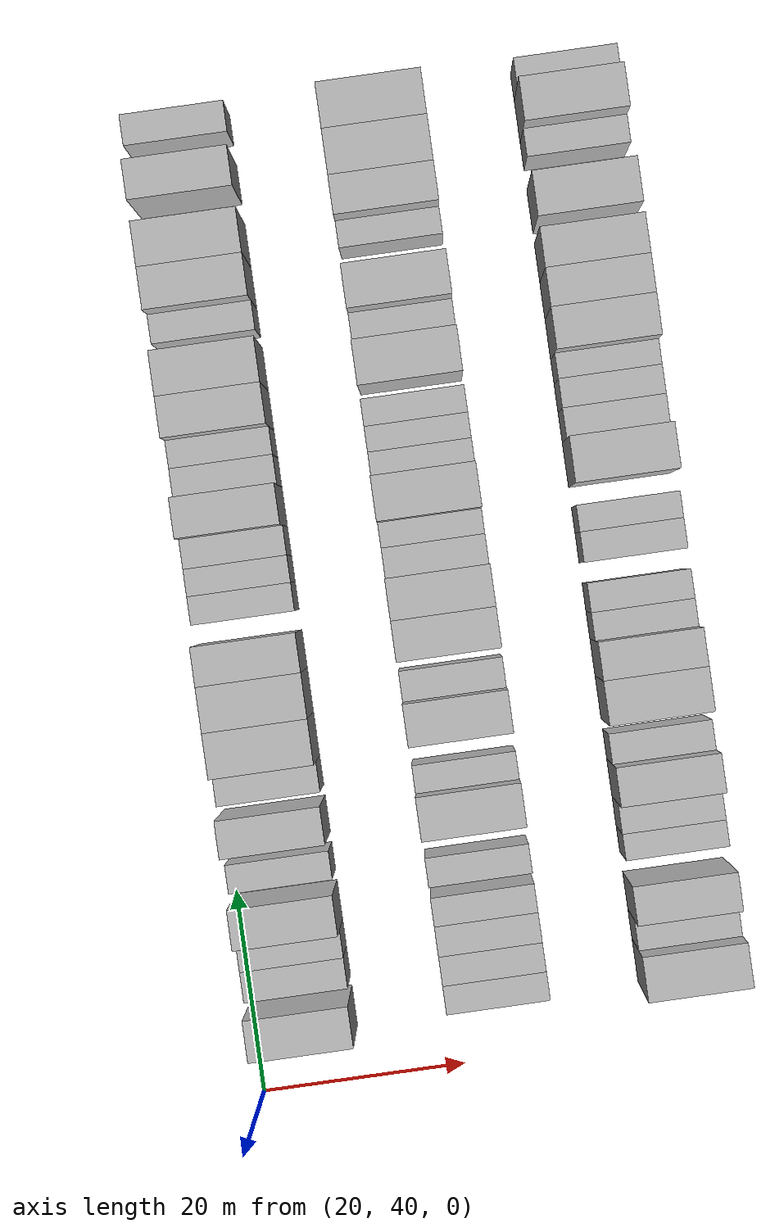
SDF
<sdf version="1.6">
 <world name="default">
  <model name="building_71">
   <static>1</static>
   <pose>25.0000 47.2286 0 0.000000 0.000000 0.000000</pose>
   <link name="link">
    <pose>0 0 4.50 0 0 0</pose>
    <collision name="collision"><geometry><box><size>10.0000 3.9848 9.0000</size></box></geometry></collision>
    <visual name="visual">
     <cast_shadows>0</cast_shadows>
     <geometry><box><size>10.0000 3.9848 9.0000</size></box></geometry>
     <material>
      <script>
       <uri>model://HANNAS_wall/materials/scripts</uri>
       <uri>model://HANNAS_wall/materials/textures</uri>
       <name>vrc/HANNAS_wall</name>
      </script>
     </material>
    </visual>
   </link>
  </model>
  <model name="building_72">
   <static>1</static>
   <pose>25.0000 51.6965 0 0.000000 0.000000 0.000000</pose>
   <link name="link">
    <pose>0 0 3.00 0 0 0</pose>
    <collision name="collision"><geometry><box><size>10.0000 2.9509 6.0000</size></box></geometry></collision>
    <visual name="visual">
     <cast_shadows>0</cast_shadows>
     <geometry><box><size>10.0000 2.9509 6.0000</size></box></geometry>
     <material>
      <script>
       <uri>model://HANNAS_wall/materials/scripts</uri>
       <uri>model://HANNAS_wall/materials/textures</uri>
       <name>vrc/HANNAS_wall</name>
      </script>
     </material>
    </visual>
   </link>
  </model>
  <model name="building_73">
   <static>1</static>
   <pose>25.0000 54.4995 0 0.000000 0.000000 0.000000</pose>
   <link name="link">
    <pose>0 0 3.00 0 0 0</pose>
    <collision name="collision"><geometry><box><size>10.0000 2.6552 6.0000</size></box></geometry></collision>
    <visual name="visual">
     <cast_shadows>0</cast_shadows>
     <geometry><box><size>10.0000 2.6552 6.0000</size></box></geometry>
     <material>
      <script>
       <uri>model://HANNAS_wall/materials/scripts</uri>
       <uri>model://HANNAS_wall/materials/textures</uri>
       <name>vrc/HANNAS_wall</name>
      </script>
     </material>
    </visual>
   </link>
  </model>
  <model name="building_74">
   <static>1</static>
   <pose>25.0000 57.7731 0 0.000000 0.000000 0.000000</pose>
   <link name="link">
    <pose>0 0 4.50 0 0 0</pose>
    <collision name="collision"><geometry><box><size>10.0000 3.8920 9.0000</size></box></geometry></collision>
    <visual name="visual">
     <cast_shadows>0</cast_shadows>
     <geometry><box><size>10.0000 3.8920 9.0000</size></box></geometry>
     <material>
      <script>
       <uri>model://HANNAS_wall/materials/scripts</uri>
       <uri>model://HANNAS_wall/materials/textures</uri>
       <name>vrc/HANNAS_wall</name>
      </script>
     </material>
    </visual>
   </link>
  </model>
  <model name="building_75">
   <static>1</static>
   <pose>25.0000 62.1037 0 0.000000 0.000000 0.000000</pose>
   <link name="link">
    <pose>0 0 3.00 0 0 0</pose>
    <collision name="collision"><geometry><box><size>10.0000 2.7691 6.0000</size></box></geometry></collision>
    <visual name="visual">
     <cast_shadows>0</cast_shadows>
     <geometry><box><size>10.0000 2.7691 6.0000</size></box></geometry>
     <material>
      <script>
       <uri>model://HANNAS_wall/materials/scripts</uri>
       <uri>model://HANNAS_wall/materials/textures</uri>
       <name>vrc/HANNAS_wall</name>
      </script>
     </material>
    </visual>
   </link>
  </model>
  <model name="building_76">
   <static>1</static>
   <pose>25.0000 66.3098 0 0.000000 0.000000 0.000000</pose>
   <link name="link">
    <pose>0 0 4.50 0 0 0</pose>
    <collision name="collision"><geometry><box><size>10.0000 3.6431 9.0000</size></box></geometry></collision>
    <visual name="visual">
     <cast_shadows>0</cast_shadows>
     <geometry><box><size>10.0000 3.6431 9.0000</size></box></geometry>
     <material>
      <script>
       <uri>model://HANNAS_wall/materials/scripts</uri>
       <uri>model://HANNAS_wall/materials/textures</uri>
       <name>vrc/HANNAS_wall</name>
      </script>
     </material>
    </visual>
   </link>
  </model>
  <model name="building_77">
   <static>1</static>
   <pose>25.0000 70.5942 0 0.000000 0.000000 0.000000</pose>
   <link name="link">
    <pose>0 0 3.00 0 0 0</pose>
    <collision name="collision"><geometry><box><size>10.0000 2.9257 6.0000</size></box></geometry></collision>
    <visual name="visual">
     <cast_shadows>0</cast_shadows>
     <geometry><box><size>10.0000 2.9257 6.0000</size></box></geometry>
     <material>
      <script>
       <uri>model://HANNAS_wall/materials/scripts</uri>
       <uri>model://HANNAS_wall/materials/textures</uri>
       <name>vrc/HANNAS_wall</name>
      </script>
     </material>
    </visual>
   </link>
  </model>
  <model name="building_78">
   <static>1</static>
   <pose>25.0000 74.2457 0 0.000000 0.000000 0.000000</pose>
   <link name="link">
    <pose>0 0 4.50 0 0 0</pose>
    <collision name="collision"><geometry><box><size>10.0000 4.3774 9.0000</size></box></geometry></collision>
    <visual name="visual">
     <cast_shadows>0</cast_shadows>
     <geometry><box><size>10.0000 4.3774 9.0000</size></box></geometry>
     <material>
      <script>
       <uri>model://HANNAS_wall/materials/scripts</uri>
       <uri>model://HANNAS_wall/materials/textures</uri>
       <name>vrc/HANNAS_wall</name>
      </script>
     </material>
    </visual>
   </link>
  </model>
  <model name="building_79">
   <static>1</static>
   <pose>25.0000 78.6218 0 0.000000 0.000000 0.000000</pose>
   <link name="link">
    <pose>0 0 4.50 0 0 0</pose>
    <collision name="collision"><geometry><box><size>10.0000 4.3747 9.0000</size></box></geometry></collision>
    <visual name="visual">
     <cast_shadows>0</cast_shadows>
     <geometry><box><size>10.0000 4.3747 9.0000</size></box></geometry>
     <material>
      <script>
       <uri>model://HANNAS_wall/materials/scripts</uri>
       <uri>model://HANNAS_wall/materials/textures</uri>
       <name>vrc/HANNAS_wall</name>
      </script>
     </material>
    </visual>
   </link>
  </model>
  <model name="building_80">
   <static>1</static>
   <pose>25.0000 82.7082 0 0.000000 0.000000 0.000000</pose>
   <link name="link">
    <pose>0 0 4.50 0 0 0</pose>
    <collision name="collision"><geometry><box><size>10.0000 3.7982 9.0000</size></box></geometry></collision>
    <visual name="visual">
     <cast_shadows>0</cast_shadows>
     <geometry><box><size>10.0000 3.7982 9.0000</size></box></geometry>
     <material>
      <script>
       <uri>model://HANNAS_wall/materials/scripts</uri>
       <uri>model://HANNAS_wall/materials/textures</uri>
       <name>vrc/HANNAS_wall</name>
      </script>
     </material>
    </visual>
   </link>
  </model>
  <model name="building_81">
   <static>1</static>
   <pose>25.0000 87.9772 0 0.000000 0.000000 0.000000</pose>
   <link name="link">
    <pose>0 0 3.00 0 0 0</pose>
    <collision name="collision"><geometry><box><size>10.0000 2.7397 6.0000</size></box></geometry></collision>
    <visual name="visual">
     <cast_shadows>0</cast_shadows>
     <geometry><box><size>10.0000 2.7397 6.0000</size></box></geometry>
     <material>
      <script>
       <uri>model://HANNAS_wall/materials/scripts</uri>
       <uri>model://HANNAS_wall/materials/textures</uri>
       <name>vrc/HANNAS_wall</name>
      </script>
     </material>
    </visual>
   </link>
  </model>
  <model name="building_82">
   <static>1</static>
   <pose>25.0000 90.6677 0 0.000000 0.000000 0.000000</pose>
   <link name="link">
    <pose>0 0 3.00 0 0 0</pose>
    <collision name="collision"><geometry><box><size>10.0000 2.6412 6.0000</size></box></geometry></collision>
    <visual name="visual">
     <cast_shadows>0</cast_shadows>
     <geometry><box><size>10.0000 2.6412 6.0000</size></box></geometry>
     <material>
      <script>
       <uri>model://HANNAS_wall/materials/scripts</uri>
       <uri>model://HANNAS_wall/materials/textures</uri>
       <name>vrc/HANNAS_wall</name>
      </script>
     </material>
    </visual>
   </link>
  </model>
  <model name="building_83">
   <static>1</static>
   <pose>25.0000 93.4304 0 0.000000 0.000000 0.000000</pose>
   <link name="link">
    <pose>0 0 3.00 0 0 0</pose>
    <collision name="collision"><geometry><box><size>10.0000 2.8843 6.0000</size></box></geometry></collision>
    <visual name="visual">
     <cast_shadows>0</cast_shadows>
     <geometry><box><size>10.0000 2.8843 6.0000</size></box></geometry>
     <material>
      <script>
       <uri>model://HANNAS_wall/materials/scripts</uri>
       <uri>model://HANNAS_wall/materials/textures</uri>
       <name>vrc/HANNAS_wall</name>
      </script>
     </material>
    </visual>
   </link>
  </model>
  <model name="building_84">
   <static>1</static>
   <pose>25.0000 96.8308 0 0.000000 0.000000 0.000000</pose>
   <link name="link">
    <pose>0 0 4.50 0 0 0</pose>
    <collision name="collision"><geometry><box><size>10.0000 3.9165 9.0000</size></box></geometry></collision>
    <visual name="visual">
     <cast_shadows>0</cast_shadows>
     <geometry><box><size>10.0000 3.9165 9.0000</size></box></geometry>
     <material>
      <script>
       <uri>model://HANNAS_wall/materials/scripts</uri>
       <uri>model://HANNAS_wall/materials/textures</uri>
       <name>vrc/HANNAS_wall</name>
      </script>
     </material>
    </visual>
   </link>
  </model>
  <model name="building_85">
   <static>1</static>
   <pose>25.0000 100.2421 0 0.000000 0.000000 0.000000</pose>
   <link name="link">
    <pose>0 0 3.00 0 0 0</pose>
    <collision name="collision"><geometry><box><size>10.0000 2.9061 6.0000</size></box></geometry></collision>
    <visual name="visual">
     <cast_shadows>0</cast_shadows>
     <geometry><box><size>10.0000 2.9061 6.0000</size></box></geometry>
     <material>
      <script>
       <uri>model://HANNAS_wall/materials/scripts</uri>
       <uri>model://HANNAS_wall/materials/textures</uri>
       <name>vrc/HANNAS_wall</name>
      </script>
     </material>
    </visual>
   </link>
  </model>
  <model name="building_86">
   <static>1</static>
   <pose>25.0000 103.0500 0 0.000000 0.000000 0.000000</pose>
   <link name="link">
    <pose>0 0 3.00 0 0 0</pose>
    <collision name="collision"><geometry><box><size>10.0000 2.7096 6.0000</size></box></geometry></collision>
    <visual name="visual">
     <cast_shadows>0</cast_shadows>
     <geometry><box><size>10.0000 2.7096 6.0000</size></box></geometry>
     <material>
      <script>
       <uri>model://HANNAS_wall/materials/scripts</uri>
       <uri>model://HANNAS_wall/materials/textures</uri>
       <name>vrc/HANNAS_wall</name>
      </script>
     </material>
    </visual>
   </link>
  </model>
  <model name="building_87">
   <static>1</static>
   <pose>25.0000 106.3775 0 0.000000 0.000000 0.000000</pose>
   <link name="link">
    <pose>0 0 4.50 0 0 0</pose>
    <collision name="collision"><geometry><box><size>10.0000 3.9454 9.0000</size></box></geometry></collision>
    <visual name="visual">
     <cast_shadows>0</cast_shadows>
     <geometry><box><size>10.0000 3.9454 9.0000</size></box></geometry>
     <material>
      <script>
       <uri>model://HANNAS_wall/materials/scripts</uri>
       <uri>model://HANNAS_wall/materials/textures</uri>
       <name>vrc/HANNAS_wall</name>
      </script>
     </material>
    </visual>
   </link>
  </model>
  <model name="building_88">
   <static>1</static>
   <pose>25.0000 110.5230 0 0.000000 0.000000 0.000000</pose>
   <link name="link">
    <pose>0 0 4.50 0 0 0</pose>
    <collision name="collision"><geometry><box><size>10.0000 4.3455 9.0000</size></box></geometry></collision>
    <visual name="visual">
     <cast_shadows>0</cast_shadows>
     <geometry><box><size>10.0000 4.3455 9.0000</size></box></geometry>
     <material>
      <script>
       <uri>model://HANNAS_wall/materials/scripts</uri>
       <uri>model://HANNAS_wall/materials/textures</uri>
       <name>vrc/HANNAS_wall</name>
      </script>
     </material>
    </visual>
   </link>
  </model>
  <model name="building_89">
   <static>1</static>
   <pose>25.0000 115.1165 0 0.000000 0.000000 0.000000</pose>
   <link name="link">
    <pose>0 0 3.00 0 0 0</pose>
    <collision name="collision"><geometry><box><size>10.0000 2.8415 6.0000</size></box></geometry></collision>
    <visual name="visual">
     <cast_shadows>0</cast_shadows>
     <geometry><box><size>10.0000 2.8415 6.0000</size></box></geometry>
     <material>
      <script>
       <uri>model://HANNAS_wall/materials/scripts</uri>
       <uri>model://HANNAS_wall/materials/textures</uri>
       <name>vrc/HANNAS_wall</name>
      </script>
     </material>
    </visual>
   </link>
  </model>
  <model name="building_90">
   <static>1</static>
   <pose>25.0000 118.5710 0 0.000000 0.000000 0.000000</pose>
   <link name="link">
    <pose>0 0 4.50 0 0 0</pose>
    <collision name="collision"><geometry><box><size>10.0000 4.0676 9.0000</size></box></geometry></collision>
    <visual name="visual">
     <cast_shadows>0</cast_shadows>
     <geometry><box><size>10.0000 4.0676 9.0000</size></box></geometry>
     <material>
      <script>
       <uri>model://HANNAS_wall/materials/scripts</uri>
       <uri>model://HANNAS_wall/materials/textures</uri>
       <name>vrc/HANNAS_wall</name>
      </script>
     </material>
    </visual>
   </link>
  </model>
  <model name="building_91">
   <static>1</static>
   <pose>25.0000 122.7736 0 0.000000 0.000000 0.000000</pose>
   <link name="link">
    <pose>0 0 4.50 0 0 0</pose>
    <collision name="collision"><geometry><box><size>10.0000 4.3375 9.0000</size></box></geometry></collision>
    <visual name="visual">
     <cast_shadows>0</cast_shadows>
     <geometry><box><size>10.0000 4.3375 9.0000</size></box></geometry>
     <material>
      <script>
       <uri>model://HANNAS_wall/materials/scripts</uri>
       <uri>model://HANNAS_wall/materials/textures</uri>
       <name>vrc/HANNAS_wall</name>
      </script>
     </material>
    </visual>
   </link>
  </model>
  <model name="building_92">
   <static>1</static>
   <pose>25.0000 128.8661 0 0.000000 0.000000 0.000000</pose>
   <link name="link">
    <pose>0 0 4.50 0 0 0</pose>
    <collision name="collision"><geometry><box><size>10.0000 3.8475 9.0000</size></box></geometry></collision>
    <visual name="visual">
     <cast_shadows>0</cast_shadows>
     <geometry><box><size>10.0000 3.8475 9.0000</size></box></geometry>
     <material>
      <script>
       <uri>model://HANNAS_wall/materials/scripts</uri>
       <uri>model://HANNAS_wall/materials/textures</uri>
       <name>vrc/HANNAS_wall</name>
      </script>
     </material>
    </visual>
   </link>
  </model>
  <model name="building_93">
   <static>1</static>
   <pose>25.0000 134.2841 0 0.000000 0.000000 0.000000</pose>
   <link name="link">
    <pose>0 0 3.00 0 0 0</pose>
    <collision name="collision"><geometry><box><size>10.0000 2.9885 6.0000</size></box></geometry></collision>
    <visual name="visual">
     <cast_shadows>0</cast_shadows>
     <geometry><box><size>10.0000 2.9885 6.0000</size></box></geometry>
     <material>
      <script>
       <uri>model://HANNAS_wall/materials/scripts</uri>
       <uri>model://HANNAS_wall/materials/textures</uri>
       <name>vrc/HANNAS_wall</name>
      </script>
     </material>
    </visual>
   </link>
  </model>
  <model name="building_188">
   <static>1</static>
   <pose>44.0000 47.7915 0 0.000000 0.000000 0.000000</pose>
   <link name="link">
    <pose>0 0 3.00 0 0 0</pose>
    <collision name="collision"><geometry><box><size>10.0000 2.7388 6.0000</size></box></geometry></collision>
    <visual name="visual">
     <cast_shadows>0</cast_shadows>
     <geometry><box><size>10.0000 2.7388 6.0000</size></box></geometry>
     <material>
      <script>
       <uri>model://HANNAS_wall/materials/scripts</uri>
       <uri>model://HANNAS_wall/materials/textures</uri>
       <name>vrc/HANNAS_wall</name>
      </script>
     </material>
    </visual>
   </link>
  </model>
  <model name="building_189">
   <static>1</static>
   <pose>44.0000 50.5681 0 0.000000 0.000000 0.000000</pose>
   <link name="link">
    <pose>0 0 3.00 0 0 0</pose>
    <collision name="collision"><geometry><box><size>10.0000 2.8144 6.0000</size></box></geometry></collision>
    <visual name="visual">
     <cast_shadows>0</cast_shadows>
     <geometry><box><size>10.0000 2.8144 6.0000</size></box></geometry>
     <material>
      <script>
       <uri>model://HANNAS_wall/materials/scripts</uri>
       <uri>model://HANNAS_wall/materials/textures</uri>
       <name>vrc/HANNAS_wall</name>
      </script>
     </material>
    </visual>
   </link>
  </model>
  <model name="building_190">
   <static>1</static>
   <pose>44.0000 53.4268 0 0.000000 0.000000 0.000000</pose>
   <link name="link">
    <pose>0 0 3.00 0 0 0</pose>
    <collision name="collision"><geometry><box><size>10.0000 2.9030 6.0000</size></box></geometry></collision>
    <visual name="visual">
     <cast_shadows>0</cast_shadows>
     <geometry><box><size>10.0000 2.9030 6.0000</size></box></geometry>
     <material>
      <script>
       <uri>model://HANNAS_wall/materials/scripts</uri>
       <uri>model://HANNAS_wall/materials/textures</uri>
       <name>vrc/HANNAS_wall</name>
      </script>
     </material>
    </visual>
   </link>
  </model>
  <model name="building_191">
   <static>1</static>
   <pose>44.0000 56.2660 0 0.000000 0.000000 0.000000</pose>
   <link name="link">
    <pose>0 0 3.00 0 0 0</pose>
    <collision name="collision"><geometry><box><size>10.0000 2.7755 6.0000</size></box></geometry></collision>
    <visual name="visual">
     <cast_shadows>0</cast_shadows>
     <geometry><box><size>10.0000 2.7755 6.0000</size></box></geometry>
     <material>
      <script>
       <uri>model://HANNAS_wall/materials/scripts</uri>
       <uri>model://HANNAS_wall/materials/textures</uri>
       <name>vrc/HANNAS_wall</name>
      </script>
     </material>
    </visual>
   </link>
  </model>
  <model name="building_192">
   <static>1</static>
   <pose>44.0000 60.0739 0 0.000000 0.000000 0.000000</pose>
   <link name="link">
    <pose>0 0 3.00 0 0 0</pose>
    <collision name="collision"><geometry><box><size>10.0000 2.8402 6.0000</size></box></geometry></collision>
    <visual name="visual">
     <cast_shadows>0</cast_shadows>
     <geometry><box><size>10.0000 2.8402 6.0000</size></box></geometry>
     <material>
      <script>
       <uri>model://HANNAS_wall/materials/scripts</uri>
       <uri>model://HANNAS_wall/materials/textures</uri>
       <name>vrc/HANNAS_wall</name>
      </script>
     </material>
    </visual>
   </link>
  </model>
  <model name="building_193">
   <static>1</static>
   <pose>44.0000 65.6037 0 0.000000 0.000000 0.000000</pose>
   <link name="link">
    <pose>0 0 4.50 0 0 0</pose>
    <collision name="collision"><geometry><box><size>10.0000 4.2195 9.0000</size></box></geometry></collision>
    <visual name="visual">
     <cast_shadows>0</cast_shadows>
     <geometry><box><size>10.0000 4.2195 9.0000</size></box></geometry>
     <material>
      <script>
       <uri>model://HANNAS_wall/materials/scripts</uri>
       <uri>model://HANNAS_wall/materials/textures</uri>
       <name>vrc/HANNAS_wall</name>
      </script>
     </material>
    </visual>
   </link>
  </model>
  <model name="building_194">
   <static>1</static>
   <pose>44.0000 69.0674 0 0.000000 0.000000 0.000000</pose>
   <link name="link">
    <pose>0 0 3.00 0 0 0</pose>
    <collision name="collision"><geometry><box><size>10.0000 2.7080 6.0000</size></box></geometry></collision>
    <visual name="visual">
     <cast_shadows>0</cast_shadows>
     <geometry><box><size>10.0000 2.7080 6.0000</size></box></geometry>
     <material>
      <script>
       <uri>model://HANNAS_wall/materials/scripts</uri>
       <uri>model://HANNAS_wall/materials/textures</uri>
       <name>vrc/HANNAS_wall</name>
      </script>
     </material>
    </visual>
   </link>
  </model>
  <model name="building_195">
   <static>1</static>
   <pose>44.0000 74.4796 0 0.000000 0.000000 0.000000</pose>
   <link name="link">
    <pose>0 0 4.50 0 0 0</pose>
    <collision name="collision"><geometry><box><size>10.0000 4.1163 9.0000</size></box></geometry></collision>
    <visual name="visual">
     <cast_shadows>0</cast_shadows>
     <geometry><box><size>10.0000 4.1163 9.0000</size></box></geometry>
     <material>
      <script>
       <uri>model://HANNAS_wall/materials/scripts</uri>
       <uri>model://HANNAS_wall/materials/textures</uri>
       <name>vrc/HANNAS_wall</name>
      </script>
     </material>
    </visual>
   </link>
  </model>
  <model name="building_196">
   <static>1</static>
   <pose>44.0000 78.0209 0 0.000000 0.000000 0.000000</pose>
   <link name="link">
    <pose>0 0 3.00 0 0 0</pose>
    <collision name="collision"><geometry><box><size>10.0000 2.9663 6.0000</size></box></geometry></collision>
    <visual name="visual">
     <cast_shadows>0</cast_shadows>
     <geometry><box><size>10.0000 2.9663 6.0000</size></box></geometry>
     <material>
      <script>
       <uri>model://HANNAS_wall/materials/scripts</uri>
       <uri>model://HANNAS_wall/materials/textures</uri>
       <name>vrc/HANNAS_wall</name>
      </script>
     </material>
    </visual>
   </link>
  </model>
  <model name="building_197">
   <static>1</static>
   <pose>44.0000 82.4602 0 0.000000 0.000000 0.000000</pose>
   <link name="link">
    <pose>0 0 4.50 0 0 0</pose>
    <collision name="collision"><geometry><box><size>10.0000 3.9125 9.0000</size></box></geometry></collision>
    <visual name="visual">
     <cast_shadows>0</cast_shadows>
     <geometry><box><size>10.0000 3.9125 9.0000</size></box></geometry>
     <material>
      <script>
       <uri>model://HANNAS_wall/materials/scripts</uri>
       <uri>model://HANNAS_wall/materials/textures</uri>
       <name>vrc/HANNAS_wall</name>
      </script>
     </material>
    </visual>
   </link>
  </model>
  <model name="building_198">
   <static>1</static>
   <pose>44.0000 86.4283 0 0.000000 0.000000 0.000000</pose>
   <link name="link">
    <pose>0 0 4.50 0 0 0</pose>
    <collision name="collision"><geometry><box><size>10.0000 4.0237 9.0000</size></box></geometry></collision>
    <visual name="visual">
     <cast_shadows>0</cast_shadows>
     <geometry><box><size>10.0000 4.0237 9.0000</size></box></geometry>
     <material>
      <script>
       <uri>model://HANNAS_wall/materials/scripts</uri>
       <uri>model://HANNAS_wall/materials/textures</uri>
       <name>vrc/HANNAS_wall</name>
      </script>
     </material>
    </visual>
   </link>
  </model>
  <model name="building_199">
   <static>1</static>
   <pose>44.0000 89.9081 0 0.000000 0.000000 0.000000</pose>
   <link name="link">
    <pose>0 0 3.00 0 0 0</pose>
    <collision name="collision"><geometry><box><size>10.0000 2.9359 6.0000</size></box></geometry></collision>
    <visual name="visual">
     <cast_shadows>0</cast_shadows>
     <geometry><box><size>10.0000 2.9359 6.0000</size></box></geometry>
     <material>
      <script>
       <uri>model://HANNAS_wall/materials/scripts</uri>
       <uri>model://HANNAS_wall/materials/textures</uri>
       <name>vrc/HANNAS_wall</name>
      </script>
     </material>
    </visual>
   </link>
  </model>
  <model name="building_200">
   <static>1</static>
   <pose>44.0000 92.6048 0 0.000000 0.000000 0.000000</pose>
   <link name="link">
    <pose>0 0 3.00 0 0 0</pose>
    <collision name="collision"><geometry><box><size>10.0000 2.4577 6.0000</size></box></geometry></collision>
    <visual name="visual">
     <cast_shadows>0</cast_shadows>
     <geometry><box><size>10.0000 2.4577 6.0000</size></box></geometry>
     <material>
      <script>
       <uri>model://HANNAS_wall/materials/scripts</uri>
       <uri>model://HANNAS_wall/materials/textures</uri>
       <name>vrc/HANNAS_wall</name>
      </script>
     </material>
    </visual>
   </link>
  </model>
  <model name="building_201">
   <static>1</static>
   <pose>44.0000 96.0098 0 0.000000 0.000000 0.000000</pose>
   <link name="link">
    <pose>0 0 4.50 0 0 0</pose>
    <collision name="collision"><geometry><box><size>10.0000 4.3522 9.0000</size></box></geometry></collision>
    <visual name="visual">
     <cast_shadows>0</cast_shadows>
     <geometry><box><size>10.0000 4.3522 9.0000</size></box></geometry>
     <material>
      <script>
       <uri>model://HANNAS_wall/materials/scripts</uri>
       <uri>model://HANNAS_wall/materials/textures</uri>
       <name>vrc/HANNAS_wall</name>
      </script>
     </material>
    </visual>
   </link>
  </model>
  <model name="building_202">
   <static>1</static>
   <pose>44.0000 99.3979 0 0.000000 0.000000 0.000000</pose>
   <link name="link">
    <pose>0 0 3.00 0 0 0</pose>
    <collision name="collision"><geometry><box><size>10.0000 2.4240 6.0000</size></box></geometry></collision>
    <visual name="visual">
     <cast_shadows>0</cast_shadows>
     <geometry><box><size>10.0000 2.4240 6.0000</size></box></geometry>
     <material>
      <script>
       <uri>model://HANNAS_wall/materials/scripts</uri>
       <uri>model://HANNAS_wall/materials/textures</uri>
       <name>vrc/HANNAS_wall</name>
      </script>
     </material>
    </visual>
   </link>
  </model>
  <model name="building_203">
   <static>1</static>
   <pose>44.0000 101.8478 0 0.000000 0.000000 0.000000</pose>
   <link name="link">
    <pose>0 0 3.00 0 0 0</pose>
    <collision name="collision"><geometry><box><size>10.0000 2.4759 6.0000</size></box></geometry></collision>
    <visual name="visual">
     <cast_shadows>0</cast_shadows>
     <geometry><box><size>10.0000 2.4759 6.0000</size></box></geometry>
     <material>
      <script>
       <uri>model://HANNAS_wall/materials/scripts</uri>
       <uri>model://HANNAS_wall/materials/textures</uri>
       <name>vrc/HANNAS_wall</name>
      </script>
     </material>
    </visual>
   </link>
  </model>
  <model name="building_204">
   <static>1</static>
   <pose>44.0000 104.4055 0 0.000000 0.000000 0.000000</pose>
   <link name="link">
    <pose>0 0 3.00 0 0 0</pose>
    <collision name="collision"><geometry><box><size>10.0000 2.6394 6.0000</size></box></geometry></collision>
    <visual name="visual">
     <cast_shadows>0</cast_shadows>
     <geometry><box><size>10.0000 2.6394 6.0000</size></box></geometry>
     <material>
      <script>
       <uri>model://HANNAS_wall/materials/scripts</uri>
       <uri>model://HANNAS_wall/materials/textures</uri>
       <name>vrc/HANNAS_wall</name>
      </script>
     </material>
    </visual>
   </link>
  </model>
  <model name="building_205">
   <static>1</static>
   <pose>44.0000 108.9088 0 0.000000 0.000000 0.000000</pose>
   <link name="link">
    <pose>0 0 4.50 0 0 0</pose>
    <collision name="collision"><geometry><box><size>10.0000 4.3673 9.0000</size></box></geometry></collision>
    <visual name="visual">
     <cast_shadows>0</cast_shadows>
     <geometry><box><size>10.0000 4.3673 9.0000</size></box></geometry>
     <material>
      <script>
       <uri>model://HANNAS_wall/materials/scripts</uri>
       <uri>model://HANNAS_wall/materials/textures</uri>
       <name>vrc/HANNAS_wall</name>
      </script>
     </material>
    </visual>
   </link>
  </model>
  <model name="building_206">
   <static>1</static>
   <pose>44.0000 112.5566 0 0.000000 0.000000 0.000000</pose>
   <link name="link">
    <pose>0 0 3.00 0 0 0</pose>
    <collision name="collision"><geometry><box><size>10.0000 2.9282 6.0000</size></box></geometry></collision>
    <visual name="visual">
     <cast_shadows>0</cast_shadows>
     <geometry><box><size>10.0000 2.9282 6.0000</size></box></geometry>
     <material>
      <script>
       <uri>model://HANNAS_wall/materials/scripts</uri>
       <uri>model://HANNAS_wall/materials/textures</uri>
       <name>vrc/HANNAS_wall</name>
      </script>
     </material>
    </visual>
   </link>
  </model>
  <model name="building_207">
   <static>1</static>
   <pose>44.0000 116.1484 0 0.000000 0.000000 0.000000</pose>
   <link name="link">
    <pose>0 0 4.50 0 0 0</pose>
    <collision name="collision"><geometry><box><size>10.0000 4.2554 9.0000</size></box></geometry></collision>
    <visual name="visual">
     <cast_shadows>0</cast_shadows>
     <geometry><box><size>10.0000 4.2554 9.0000</size></box></geometry>
     <material>
      <script>
       <uri>model://HANNAS_wall/materials/scripts</uri>
       <uri>model://HANNAS_wall/materials/textures</uri>
       <name>vrc/HANNAS_wall</name>
      </script>
     </material>
    </visual>
   </link>
  </model>
  <model name="building_208">
   <static>1</static>
   <pose>44.0000 121.5848 0 0.000000 0.000000 0.000000</pose>
   <link name="link">
    <pose>0 0 3.00 0 0 0</pose>
    <collision name="collision"><geometry><box><size>10.0000 2.6173 6.0000</size></box></geometry></collision>
    <visual name="visual">
     <cast_shadows>0</cast_shadows>
     <geometry><box><size>10.0000 2.6173 6.0000</size></box></geometry>
     <material>
      <script>
       <uri>model://HANNAS_wall/materials/scripts</uri>
       <uri>model://HANNAS_wall/materials/textures</uri>
       <name>vrc/HANNAS_wall</name>
      </script>
     </material>
    </visual>
   </link>
  </model>
  <model name="building_209">
   <static>1</static>
   <pose>44.0000 124.7767 0 0.000000 0.000000 0.000000</pose>
   <link name="link">
    <pose>0 0 4.50 0 0 0</pose>
    <collision name="collision"><geometry><box><size>10.0000 3.7666 9.0000</size></box></geometry></collision>
    <visual name="visual">
     <cast_shadows>0</cast_shadows>
     <geometry><box><size>10.0000 3.7666 9.0000</size></box></geometry>
     <material>
      <script>
       <uri>model://HANNAS_wall/materials/scripts</uri>
       <uri>model://HANNAS_wall/materials/textures</uri>
       <name>vrc/HANNAS_wall</name>
      </script>
     </material>
    </visual>
   </link>
  </model>
  <model name="building_210">
   <static>1</static>
   <pose>44.0000 128.8547 0 0.000000 0.000000 0.000000</pose>
   <link name="link">
    <pose>0 0 4.50 0 0 0</pose>
    <collision name="collision"><geometry><box><size>10.0000 4.3894 9.0000</size></box></geometry></collision>
    <visual name="visual">
     <cast_shadows>0</cast_shadows>
     <geometry><box><size>10.0000 4.3894 9.0000</size></box></geometry>
     <material>
      <script>
       <uri>model://HANNAS_wall/materials/scripts</uri>
       <uri>model://HANNAS_wall/materials/textures</uri>
       <name>vrc/HANNAS_wall</name>
      </script>
     </material>
    </visual>
   </link>
  </model>
  <model name="building_211">
   <static>1</static>
   <pose>44.0000 133.2409 0 0.000000 0.000000 0.000000</pose>
   <link name="link">
    <pose>0 0 4.50 0 0 0</pose>
    <collision name="collision"><geometry><box><size>10.0000 4.3830 9.0000</size></box></geometry></collision>
    <visual name="visual">
     <cast_shadows>0</cast_shadows>
     <geometry><box><size>10.0000 4.3830 9.0000</size></box></geometry>
     <material>
      <script>
       <uri>model://HANNAS_wall/materials/scripts</uri>
       <uri>model://HANNAS_wall/materials/textures</uri>
       <name>vrc/HANNAS_wall</name>
      </script>
     </material>
    </visual>
   </link>
  </model>
  <model name="building_303">
   <static>1</static>
   <pose>63.0000 47.7705 0 0.000000 0.000000 0.000000</pose>
   <link name="link">
    <pose>0 0 4.50 0 0 0</pose>
    <collision name="collision"><geometry><box><size>10.0000 4.2996 9.0000</size></box></geometry></collision>
    <visual name="visual">
     <cast_shadows>0</cast_shadows>
     <geometry><box><size>10.0000 4.2996 9.0000</size></box></geometry>
     <material>
      <script>
       <uri>model://HANNAS_wall/materials/scripts</uri>
       <uri>model://HANNAS_wall/materials/textures</uri>
       <name>vrc/HANNAS_wall</name>
      </script>
     </material>
    </visual>
   </link>
  </model>
  <model name="building_304">
   <static>1</static>
   <pose>63.0000 51.3966 0 0.000000 0.000000 0.000000</pose>
   <link name="link">
    <pose>0 0 3.00 0 0 0</pose>
    <collision name="collision"><geometry><box><size>10.0000 2.9526 6.0000</size></box></geometry></collision>
    <visual name="visual">
     <cast_shadows>0</cast_shadows>
     <geometry><box><size>10.0000 2.9526 6.0000</size></box></geometry>
     <material>
      <script>
       <uri>model://HANNAS_wall/materials/scripts</uri>
       <uri>model://HANNAS_wall/materials/textures</uri>
       <name>vrc/HANNAS_wall</name>
      </script>
     </material>
    </visual>
   </link>
  </model>
  <model name="building_305">
   <static>1</static>
   <pose>63.0000 54.7308 0 0.000000 0.000000 0.000000</pose>
   <link name="link">
    <pose>0 0 4.50 0 0 0</pose>
    <collision name="collision"><geometry><box><size>10.0000 3.7160 9.0000</size></box></geometry></collision>
    <visual name="visual">
     <cast_shadows>0</cast_shadows>
     <geometry><box><size>10.0000 3.7160 9.0000</size></box></geometry>
     <material>
      <script>
       <uri>model://HANNAS_wall/materials/scripts</uri>
       <uri>model://HANNAS_wall/materials/textures</uri>
       <name>vrc/HANNAS_wall</name>
      </script>
     </material>
    </visual>
   </link>
  </model>
  <model name="building_306">
   <static>1</static>
   <pose>63.0000 59.8619 0 0.000000 0.000000 0.000000</pose>
   <link name="link">
    <pose>0 0 3.00 0 0 0</pose>
    <collision name="collision"><geometry><box><size>10.0000 2.5462 6.0000</size></box></geometry></collision>
    <visual name="visual">
     <cast_shadows>0</cast_shadows>
     <geometry><box><size>10.0000 2.5462 6.0000</size></box></geometry>
     <material>
      <script>
       <uri>model://HANNAS_wall/materials/scripts</uri>
       <uri>model://HANNAS_wall/materials/textures</uri>
       <name>vrc/HANNAS_wall</name>
      </script>
     </material>
    </visual>
   </link>
  </model>
  <model name="building_307">
   <static>1</static>
   <pose>63.0000 62.6133 0 0.000000 0.000000 0.000000</pose>
   <link name="link">
    <pose>0 0 3.00 0 0 0</pose>
    <collision name="collision"><geometry><box><size>10.0000 2.9565 6.0000</size></box></geometry></collision>
    <visual name="visual">
     <cast_shadows>0</cast_shadows>
     <geometry><box><size>10.0000 2.9565 6.0000</size></box></geometry>
     <material>
      <script>
       <uri>model://HANNAS_wall/materials/scripts</uri>
       <uri>model://HANNAS_wall/materials/textures</uri>
       <name>vrc/HANNAS_wall</name>
      </script>
     </material>
    </visual>
   </link>
  </model>
  <model name="building_308">
   <static>1</static>
   <pose>63.0000 65.9754 0 0.000000 0.000000 0.000000</pose>
   <link name="link">
    <pose>0 0 4.50 0 0 0</pose>
    <collision name="collision"><geometry><box><size>10.0000 3.7678 9.0000</size></box></geometry></collision>
    <visual name="visual">
     <cast_shadows>0</cast_shadows>
     <geometry><box><size>10.0000 3.7678 9.0000</size></box></geometry>
     <material>
      <script>
       <uri>model://HANNAS_wall/materials/scripts</uri>
       <uri>model://HANNAS_wall/materials/textures</uri>
       <name>vrc/HANNAS_wall</name>
      </script>
     </material>
    </visual>
   </link>
  </model>
  <model name="building_309">
   <static>1</static>
   <pose>63.0000 69.3278 0 0.000000 0.000000 0.000000</pose>
   <link name="link">
    <pose>0 0 3.00 0 0 0</pose>
    <collision name="collision"><geometry><box><size>10.0000 2.9370 6.0000</size></box></geometry></collision>
    <visual name="visual">
     <cast_shadows>0</cast_shadows>
     <geometry><box><size>10.0000 2.9370 6.0000</size></box></geometry>
     <material>
      <script>
       <uri>model://HANNAS_wall/materials/scripts</uri>
       <uri>model://HANNAS_wall/materials/textures</uri>
       <name>vrc/HANNAS_wall</name>
      </script>
     </material>
    </visual>
   </link>
  </model>
  <model name="building_310">
   <static>1</static>
   <pose>63.0000 73.9349 0 0.000000 0.000000 0.000000</pose>
   <link name="link">
    <pose>0 0 4.50 0 0 0</pose>
    <collision name="collision"><geometry><box><size>10.0000 4.2772 9.0000</size></box></geometry></collision>
    <visual name="visual">
     <cast_shadows>0</cast_shadows>
     <geometry><box><size>10.0000 4.2772 9.0000</size></box></geometry>
     <material>
      <script>
       <uri>model://HANNAS_wall/materials/scripts</uri>
       <uri>model://HANNAS_wall/materials/textures</uri>
       <name>vrc/HANNAS_wall</name>
      </script>
     </material>
    </visual>
   </link>
  </model>
  <model name="building_311">
   <static>1</static>
   <pose>63.0000 77.9193 0 0.000000 0.000000 0.000000</pose>
   <link name="link">
    <pose>0 0 4.50 0 0 0</pose>
    <collision name="collision"><geometry><box><size>10.0000 3.6914 9.0000</size></box></geometry></collision>
    <visual name="visual">
     <cast_shadows>0</cast_shadows>
     <geometry><box><size>10.0000 3.6914 9.0000</size></box></geometry>
     <material>
      <script>
       <uri>model://HANNAS_wall/materials/scripts</uri>
       <uri>model://HANNAS_wall/materials/textures</uri>
       <name>vrc/HANNAS_wall</name>
      </script>
     </material>
    </visual>
   </link>
  </model>
  <model name="building_312">
   <static>1</static>
   <pose>63.0000 81.1245 0 0.000000 0.000000 0.000000</pose>
   <link name="link">
    <pose>0 0 3.00 0 0 0</pose>
    <collision name="collision"><geometry><box><size>10.0000 2.7190 6.0000</size></box></geometry></collision>
    <visual name="visual">
     <cast_shadows>0</cast_shadows>
     <geometry><box><size>10.0000 2.7190 6.0000</size></box></geometry>
     <material>
      <script>
       <uri>model://HANNAS_wall/materials/scripts</uri>
       <uri>model://HANNAS_wall/materials/textures</uri>
       <name>vrc/HANNAS_wall</name>
      </script>
     </material>
    </visual>
   </link>
  </model>
  <model name="building_313">
   <static>1</static>
   <pose>63.0000 83.9060 0 0.000000 0.000000 0.000000</pose>
   <link name="link">
    <pose>0 0 3.00 0 0 0</pose>
    <collision name="collision"><geometry><box><size>10.0000 2.8441 6.0000</size></box></geometry></collision>
    <visual name="visual">
     <cast_shadows>0</cast_shadows>
     <geometry><box><size>10.0000 2.8441 6.0000</size></box></geometry>
     <material>
      <script>
       <uri>model://HANNAS_wall/materials/scripts</uri>
       <uri>model://HANNAS_wall/materials/textures</uri>
       <name>vrc/HANNAS_wall</name>
      </script>
     </material>
    </visual>
   </link>
  </model>
  <model name="building_314">
   <static>1</static>
   <pose>63.0000 88.7937 0 0.000000 0.000000 0.000000</pose>
   <link name="link">
    <pose>0 0 3.00 0 0 0</pose>
    <collision name="collision"><geometry><box><size>10.0000 2.9314 6.0000</size></box></geometry></collision>
    <visual name="visual">
     <cast_shadows>0</cast_shadows>
     <geometry><box><size>10.0000 2.9314 6.0000</size></box></geometry>
     <material>
      <script>
       <uri>model://HANNAS_wall/materials/scripts</uri>
       <uri>model://HANNAS_wall/materials/textures</uri>
       <name>vrc/HANNAS_wall</name>
      </script>
     </material>
    </visual>
   </link>
  </model>
  <model name="building_315">
   <static>1</static>
   <pose>63.0000 91.5474 0 0.000000 0.000000 0.000000</pose>
   <link name="link">
    <pose>0 0 3.00 0 0 0</pose>
    <collision name="collision"><geometry><box><size>10.0000 2.5760 6.0000</size></box></geometry></collision>
    <visual name="visual">
     <cast_shadows>0</cast_shadows>
     <geometry><box><size>10.0000 2.5760 6.0000</size></box></geometry>
     <material>
      <script>
       <uri>model://HANNAS_wall/materials/scripts</uri>
       <uri>model://HANNAS_wall/materials/textures</uri>
       <name>vrc/HANNAS_wall</name>
      </script>
     </material>
    </visual>
   </link>
  </model>
  <model name="building_316">
   <static>1</static>
   <pose>63.0000 97.0543 0 0.000000 0.000000 0.000000</pose>
   <link name="link">
    <pose>0 0 4.50 0 0 0</pose>
    <collision name="collision"><geometry><box><size>10.0000 4.4377 9.0000</size></box></geometry></collision>
    <visual name="visual">
     <cast_shadows>0</cast_shadows>
     <geometry><box><size>10.0000 4.4377 9.0000</size></box></geometry>
     <material>
      <script>
       <uri>model://HANNAS_wall/materials/scripts</uri>
       <uri>model://HANNAS_wall/materials/textures</uri>
       <name>vrc/HANNAS_wall</name>
      </script>
     </material>
    </visual>
   </link>
  </model>
  <model name="building_317">
   <static>1</static>
   <pose>63.0000 100.7411 0 0.000000 0.000000 0.000000</pose>
   <link name="link">
    <pose>0 0 3.00 0 0 0</pose>
    <collision name="collision"><geometry><box><size>10.0000 2.9360 6.0000</size></box></geometry></collision>
    <visual name="visual">
     <cast_shadows>0</cast_shadows>
     <geometry><box><size>10.0000 2.9360 6.0000</size></box></geometry>
     <material>
      <script>
       <uri>model://HANNAS_wall/materials/scripts</uri>
       <uri>model://HANNAS_wall/materials/textures</uri>
       <name>vrc/HANNAS_wall</name>
      </script>
     </material>
    </visual>
   </link>
  </model>
  <model name="building_318">
   <static>1</static>
   <pose>63.0000 103.6212 0 0.000000 0.000000 0.000000</pose>
   <link name="link">
    <pose>0 0 3.00 0 0 0</pose>
    <collision name="collision"><geometry><box><size>10.0000 2.8243 6.0000</size></box></geometry></collision>
    <visual name="visual">
     <cast_shadows>0</cast_shadows>
     <geometry><box><size>10.0000 2.8243 6.0000</size></box></geometry>
     <material>
      <script>
       <uri>model://HANNAS_wall/materials/scripts</uri>
       <uri>model://HANNAS_wall/materials/textures</uri>
       <name>vrc/HANNAS_wall</name>
      </script>
     </material>
    </visual>
   </link>
  </model>
  <model name="building_319">
   <static>1</static>
   <pose>63.0000 106.2619 0 0.000000 0.000000 0.000000</pose>
   <link name="link">
    <pose>0 0 3.00 0 0 0</pose>
    <collision name="collision"><geometry><box><size>10.0000 2.4570 6.0000</size></box></geometry></collision>
    <visual name="visual">
     <cast_shadows>0</cast_shadows>
     <geometry><box><size>10.0000 2.4570 6.0000</size></box></geometry>
     <material>
      <script>
       <uri>model://HANNAS_wall/materials/scripts</uri>
       <uri>model://HANNAS_wall/materials/textures</uri>
       <name>vrc/HANNAS_wall</name>
      </script>
     </material>
    </visual>
   </link>
  </model>
  <model name="building_320">
   <static>1</static>
   <pose>63.0000 109.4962 0 0.000000 0.000000 0.000000</pose>
   <link name="link">
    <pose>0 0 4.50 0 0 0</pose>
    <collision name="collision"><geometry><box><size>10.0000 4.0117 9.0000</size></box></geometry></collision>
    <visual name="visual">
     <cast_shadows>0</cast_shadows>
     <geometry><box><size>10.0000 4.0117 9.0000</size></box></geometry>
     <material>
      <script>
       <uri>model://HANNAS_wall/materials/scripts</uri>
       <uri>model://HANNAS_wall/materials/textures</uri>
       <name>vrc/HANNAS_wall</name>
      </script>
     </material>
    </visual>
   </link>
  </model>
  <model name="building_321">
   <static>1</static>
   <pose>63.0000 113.3591 0 0.000000 0.000000 0.000000</pose>
   <link name="link">
    <pose>0 0 4.50 0 0 0</pose>
    <collision name="collision"><geometry><box><size>10.0000 3.7141 9.0000</size></box></geometry></collision>
    <visual name="visual">
     <cast_shadows>0</cast_shadows>
     <geometry><box><size>10.0000 3.7141 9.0000</size></box></geometry>
     <material>
      <script>
       <uri>model://HANNAS_wall/materials/scripts</uri>
       <uri>model://HANNAS_wall/materials/textures</uri>
       <name>vrc/HANNAS_wall</name>
      </script>
     </material>
    </visual>
   </link>
  </model>
  <model name="building_322">
   <static>1</static>
   <pose>63.0000 117.1495 0 0.000000 0.000000 0.000000</pose>
   <link name="link">
    <pose>0 0 4.50 0 0 0</pose>
    <collision name="collision"><geometry><box><size>10.0000 3.8665 9.0000</size></box></geometry></collision>
    <visual name="visual">
     <cast_shadows>0</cast_shadows>
     <geometry><box><size>10.0000 3.8665 9.0000</size></box></geometry>
     <material>
      <script>
       <uri>model://HANNAS_wall/materials/scripts</uri>
       <uri>model://HANNAS_wall/materials/textures</uri>
       <name>vrc/HANNAS_wall</name>
      </script>
     </material>
    </visual>
   </link>
  </model>
  <model name="building_323">
   <static>1</static>
   <pose>63.0000 122.2404 0 0.000000 0.000000 0.000000</pose>
   <link name="link">
    <pose>0 0 4.50 0 0 0</pose>
    <collision name="collision"><geometry><box><size>10.0000 4.3155 9.0000</size></box></geometry></collision>
    <visual name="visual">
     <cast_shadows>0</cast_shadows>
     <geometry><box><size>10.0000 4.3155 9.0000</size></box></geometry>
     <material>
      <script>
       <uri>model://HANNAS_wall/materials/scripts</uri>
       <uri>model://HANNAS_wall/materials/textures</uri>
       <name>vrc/HANNAS_wall</name>
      </script>
     </material>
    </visual>
   </link>
  </model>
  <model name="building_324">
   <static>1</static>
   <pose>63.0000 127.7520 0 0.000000 0.000000 0.000000</pose>
   <link name="link">
    <pose>0 0 3.00 0 0 0</pose>
    <collision name="collision"><geometry><box><size>10.0000 2.7075 6.0000</size></box></geometry></collision>
    <visual name="visual">
     <cast_shadows>0</cast_shadows>
     <geometry><box><size>10.0000 2.7075 6.0000</size></box></geometry>
     <material>
      <script>
       <uri>model://HANNAS_wall/materials/scripts</uri>
       <uri>model://HANNAS_wall/materials/textures</uri>
       <name>vrc/HANNAS_wall</name>
      </script>
     </material>
    </visual>
   </link>
  </model>
  <model name="building_325">
   <static>1</static>
   <pose>63.0000 131.1957 0 0.000000 0.000000 0.000000</pose>
   <link name="link">
    <pose>0 0 4.50 0 0 0</pose>
    <collision name="collision"><geometry><box><size>10.0000 4.1800 9.0000</size></box></geometry></collision>
    <visual name="visual">
     <cast_shadows>0</cast_shadows>
     <geometry><box><size>10.0000 4.1800 9.0000</size></box></geometry>
     <material>
      <script>
       <uri>model://HANNAS_wall/materials/scripts</uri>
       <uri>model://HANNAS_wall/materials/textures</uri>
       <name>vrc/HANNAS_wall</name>
      </script>
     </material>
    </visual>
   </link>
  </model>
  <model name="building_326">
   <static>1</static>
   <pose>63.0000 134.6030 0 0.000000 0.000000 0.000000</pose>
   <link name="link">
    <pose>0 0 3.00 0 0 0</pose>
    <collision name="collision"><geometry><box><size>10.0000 2.6346 6.0000</size></box></geometry></collision>
    <visual name="visual">
     <cast_shadows>0</cast_shadows>
     <geometry><box><size>10.0000 2.6346 6.0000</size></box></geometry>
     <material>
      <script>
       <uri>model://HANNAS_wall/materials/scripts</uri>
       <uri>model://HANNAS_wall/materials/textures</uri>
       <name>vrc/HANNAS_wall</name>
      </script>
     </material>
    </visual>
   </link>
  </model>
 </world>
</sdf>
